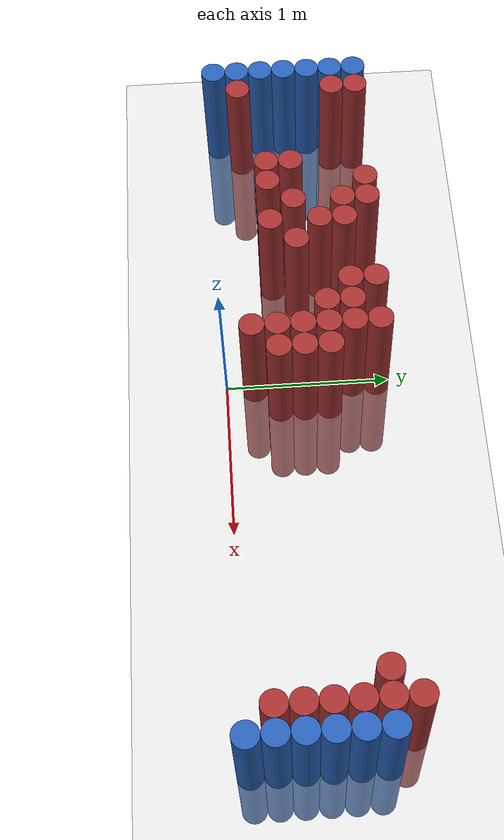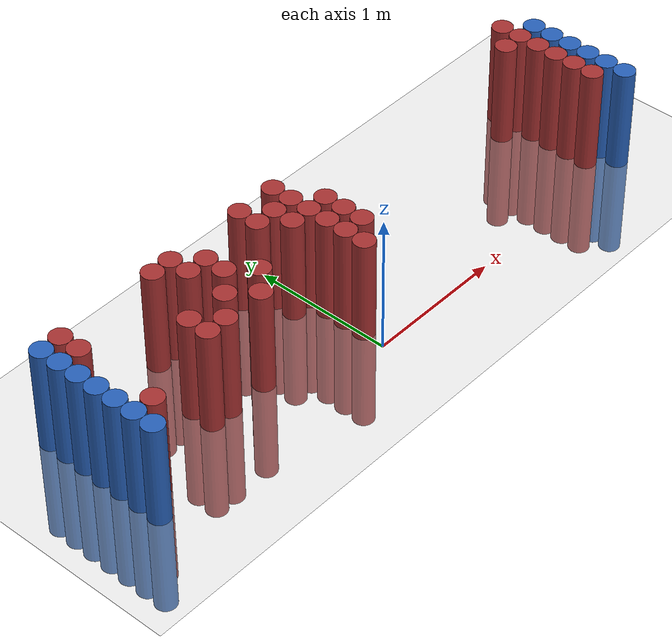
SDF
<sdf version="1.6">
 <world name="default">
  <model name="ground_plane">
   <static>1</static>
   <link name="link">
    <collision name="collision">
     <geometry><plane><normal>0 0 1</normal><size>100 100</size></plane></geometry>
     <surface><friction><ode><mu>100</mu><mu2>50</mu2></ode></friction></surface>
    </collision>
    <visual name="visual">
     <cast_shadows>0</cast_shadows>
     <geometry><plane><normal>0 0 1</normal><size>100 100</size></plane></geometry>
     <material>
      <script><uri>file://media/materials/scripts/gazebo.material</uri><name>Gazebo/Grey</name></script>
     </material>
    </visual>
   </link>
  </model>
  <model name="unit_cylinder_94">
   <static>1</static>
   <pose>2.425000 0.025000 0.000000 0.000000 0.000000 0.000000</pose>
   <link name="link">
    <inertial>
     <mass>1</mass>
     <inertia><ixx>0.145833</ixx><ixy>0</ixy><ixz>0</ixz><iyy>0.145833</iyy><iyz>0</iyz><izz>0.125</izz></inertia>
    </inertial>
    <collision name="collision">
     <geometry><cylinder><radius>0.075000</radius><length>1.5</length></cylinder></geometry>
    </collision>
    <visual name="visual">
     <geometry><cylinder><radius>0.075000</radius><length>1.5</length></cylinder></geometry>
     <material>
      <ambient>0.152000 0.379000 0.720000 1</ambient>
      <diffuse>0.152000 0.379000 0.720000 1</diffuse>
     </material>
     <material>
      <script><name>Gazebo/Grey</name><uri>file://media/materials/scripts/gazebo.material</uri></script>
     </material>
    </visual>
   </link>
  </model>
  <model name="unit_cylinder_95">
   <static>1</static>
   <pose>-1.925000 0.025000 0.000000 0.000000 0.000000 0.000000</pose>
   <link name="link">
    <inertial>
     <mass>1</mass>
     <inertia><ixx>0.145833</ixx><ixy>0</ixy><ixz>0</ixz><iyy>0.145833</iyy><iyz>0</iyz><izz>0.125</izz></inertia>
    </inertial>
    <collision name="collision">
     <geometry><cylinder><radius>0.075000</radius><length>1.5</length></cylinder></geometry>
    </collision>
    <visual name="visual">
     <geometry><cylinder><radius>0.075000</radius><length>1.5</length></cylinder></geometry>
     <material>
      <ambient>0.152000 0.379000 0.720000 1</ambient>
      <diffuse>0.152000 0.379000 0.720000 1</diffuse>
     </material>
     <material>
      <script><name>Gazebo/Grey</name><uri>file://media/materials/scripts/gazebo.material</uri></script>
     </material>
    </visual>
   </link>
  </model>
  <model name="unit_cylinder_96">
   <static>1</static>
   <pose>-1.925000 0.175000 0.000000 0.000000 0.000000 0.000000</pose>
   <link name="link">
    <inertial>
     <mass>1</mass>
     <inertia><ixx>0.145833</ixx><ixy>0</ixy><ixz>0</ixz><iyy>0.145833</iyy><iyz>0</iyz><izz>0.125</izz></inertia>
    </inertial>
    <collision name="collision">
     <geometry><cylinder><radius>0.075000</radius><length>1.5</length></cylinder></geometry>
    </collision>
    <visual name="visual">
     <geometry><cylinder><radius>0.075000</radius><length>1.5</length></cylinder></geometry>
     <material>
      <ambient>0.152000 0.379000 0.720000 1</ambient>
      <diffuse>0.152000 0.379000 0.720000 1</diffuse>
     </material>
     <material>
      <script><name>Gazebo/Grey</name><uri>file://media/materials/scripts/gazebo.material</uri></script>
     </material>
    </visual>
   </link>
  </model>
  <model name="unit_cylinder_97">
   <static>1</static>
   <pose>-1.925000 0.325000 0.000000 0.000000 0.000000 0.000000</pose>
   <link name="link">
    <inertial>
     <mass>1</mass>
     <inertia><ixx>0.145833</ixx><ixy>0</ixy><ixz>0</ixz><iyy>0.145833</iyy><iyz>0</iyz><izz>0.125</izz></inertia>
    </inertial>
    <collision name="collision">
     <geometry><cylinder><radius>0.075000</radius><length>1.5</length></cylinder></geometry>
    </collision>
    <visual name="visual">
     <geometry><cylinder><radius>0.075000</radius><length>1.5</length></cylinder></geometry>
     <material>
      <ambient>0.152000 0.379000 0.720000 1</ambient>
      <diffuse>0.152000 0.379000 0.720000 1</diffuse>
     </material>
     <material>
      <script><name>Gazebo/Grey</name><uri>file://media/materials/scripts/gazebo.material</uri></script>
     </material>
    </visual>
   </link>
  </model>
  <model name="unit_cylinder_98">
   <static>1</static>
   <pose>-1.925000 0.475000 0.000000 0.000000 0.000000 0.000000</pose>
   <link name="link">
    <inertial>
     <mass>1</mass>
     <inertia><ixx>0.145833</ixx><ixy>0</ixy><ixz>0</ixz><iyy>0.145833</iyy><iyz>0</iyz><izz>0.125</izz></inertia>
    </inertial>
    <collision name="collision">
     <geometry><cylinder><radius>0.075000</radius><length>1.5</length></cylinder></geometry>
    </collision>
    <visual name="visual">
     <geometry><cylinder><radius>0.075000</radius><length>1.5</length></cylinder></geometry>
     <material>
      <ambient>0.152000 0.379000 0.720000 1</ambient>
      <diffuse>0.152000 0.379000 0.720000 1</diffuse>
     </material>
     <material>
      <script><name>Gazebo/Grey</name><uri>file://media/materials/scripts/gazebo.material</uri></script>
     </material>
    </visual>
   </link>
  </model>
  <model name="unit_cylinder_99">
   <static>1</static>
   <pose>-1.925000 0.625000 0.000000 0.000000 0.000000 0.000000</pose>
   <link name="link">
    <inertial>
     <mass>1</mass>
     <inertia><ixx>0.145833</ixx><ixy>0</ixy><ixz>0</ixz><iyy>0.145833</iyy><iyz>0</iyz><izz>0.125</izz></inertia>
    </inertial>
    <collision name="collision">
     <geometry><cylinder><radius>0.075000</radius><length>1.5</length></cylinder></geometry>
    </collision>
    <visual name="visual">
     <geometry><cylinder><radius>0.075000</radius><length>1.5</length></cylinder></geometry>
     <material>
      <ambient>0.152000 0.379000 0.720000 1</ambient>
      <diffuse>0.152000 0.379000 0.720000 1</diffuse>
     </material>
     <material>
      <script><name>Gazebo/Grey</name><uri>file://media/materials/scripts/gazebo.material</uri></script>
     </material>
    </visual>
   </link>
  </model>
  <model name="unit_cylinder_100">
   <static>1</static>
   <pose>-1.925000 0.775000 0.000000 0.000000 0.000000 0.000000</pose>
   <link name="link">
    <inertial>
     <mass>1</mass>
     <inertia><ixx>0.145833</ixx><ixy>0</ixy><ixz>0</ixz><iyy>0.145833</iyy><iyz>0</iyz><izz>0.125</izz></inertia>
    </inertial>
    <collision name="collision">
     <geometry><cylinder><radius>0.075000</radius><length>1.5</length></cylinder></geometry>
    </collision>
    <visual name="visual">
     <geometry><cylinder><radius>0.075000</radius><length>1.5</length></cylinder></geometry>
     <material>
      <ambient>0.152000 0.379000 0.720000 1</ambient>
      <diffuse>0.152000 0.379000 0.720000 1</diffuse>
     </material>
     <material>
      <script><name>Gazebo/Grey</name><uri>file://media/materials/scripts/gazebo.material</uri></script>
     </material>
    </visual>
   </link>
  </model>
  <model name="unit_cylinder_101">
   <static>1</static>
   <pose>-1.925000 0.925000 0.000000 0.000000 0.000000 0.000000</pose>
   <link name="link">
    <inertial>
     <mass>1</mass>
     <inertia><ixx>0.145833</ixx><ixy>0</ixy><ixz>0</ixz><iyy>0.145833</iyy><iyz>0</iyz><izz>0.125</izz></inertia>
    </inertial>
    <collision name="collision">
     <geometry><cylinder><radius>0.075000</radius><length>1.5</length></cylinder></geometry>
    </collision>
    <visual name="visual">
     <geometry><cylinder><radius>0.075000</radius><length>1.5</length></cylinder></geometry>
     <material>
      <ambient>0.152000 0.379000 0.720000 1</ambient>
      <diffuse>0.152000 0.379000 0.720000 1</diffuse>
     </material>
     <material>
      <script><name>Gazebo/Grey</name><uri>file://media/materials/scripts/gazebo.material</uri></script>
     </material>
    </visual>
   </link>
  </model>
  <model name="unit_cylinder_126">
   <static>1</static>
   <pose>-1.775000 0.175000 0.000000 0.000000 0.000000 0.000000</pose>
   <link name="link">
    <inertial>
     <mass>1</mass>
     <inertia><ixx>0.145833</ixx><ixy>0</ixy><ixz>0</ixz><iyy>0.145833</iyy><iyz>0</iyz><izz>0.125</izz></inertia>
    </inertial>
    <collision name="collision">
     <geometry><cylinder><radius>0.075000</radius><length>1.5</length></cylinder></geometry>
    </collision>
    <visual name="visual">
     <geometry><cylinder><radius>0.075000</radius><length>1.5</length></cylinder></geometry>
     <material>
      <ambient>0.648000 0.192000 0.192000 1</ambient>
      <diffuse>0.648000 0.192000 0.192000 1</diffuse>
     </material>
     <material>
      <script><name>Gazebo/Grey</name><uri>file://media/materials/scripts/gazebo.material</uri></script>
     </material>
    </visual>
   </link>
  </model>
  <model name="unit_cylinder_127">
   <static>1</static>
   <pose>-1.775000 0.775000 0.000000 0.000000 0.000000 0.000000</pose>
   <link name="link">
    <inertial>
     <mass>1</mass>
     <inertia><ixx>0.145833</ixx><ixy>0</ixy><ixz>0</ixz><iyy>0.145833</iyy><iyz>0</iyz><izz>0.125</izz></inertia>
    </inertial>
    <collision name="collision">
     <geometry><cylinder><radius>0.075000</radius><length>1.5</length></cylinder></geometry>
    </collision>
    <visual name="visual">
     <geometry><cylinder><radius>0.075000</radius><length>1.5</length></cylinder></geometry>
     <material>
      <ambient>0.648000 0.192000 0.192000 1</ambient>
      <diffuse>0.648000 0.192000 0.192000 1</diffuse>
     </material>
     <material>
      <script><name>Gazebo/Grey</name><uri>file://media/materials/scripts/gazebo.material</uri></script>
     </material>
    </visual>
   </link>
  </model>
  <model name="unit_cylinder_128">
   <static>1</static>
   <pose>-1.775000 0.925000 0.000000 0.000000 0.000000 0.000000</pose>
   <link name="link">
    <inertial>
     <mass>1</mass>
     <inertia><ixx>0.145833</ixx><ixy>0</ixy><ixz>0</ixz><iyy>0.145833</iyy><iyz>0</iyz><izz>0.125</izz></inertia>
    </inertial>
    <collision name="collision">
     <geometry><cylinder><radius>0.075000</radius><length>1.5</length></cylinder></geometry>
    </collision>
    <visual name="visual">
     <geometry><cylinder><radius>0.075000</radius><length>1.5</length></cylinder></geometry>
     <material>
      <ambient>0.648000 0.192000 0.192000 1</ambient>
      <diffuse>0.648000 0.192000 0.192000 1</diffuse>
     </material>
     <material>
      <script><name>Gazebo/Grey</name><uri>file://media/materials/scripts/gazebo.material</uri></script>
     </material>
    </visual>
   </link>
  </model>
  <model name="unit_cylinder_153">
   <static>1</static>
   <pose>-1.175000 0.325000 0.000000 0.000000 0.000000 0.000000</pose>
   <link name="link">
    <inertial>
     <mass>1</mass>
     <inertia><ixx>0.145833</ixx><ixy>0</ixy><ixz>0</ixz><iyy>0.145833</iyy><iyz>0</iyz><izz>0.125</izz></inertia>
    </inertial>
    <collision name="collision">
     <geometry><cylinder><radius>0.075000</radius><length>1.5</length></cylinder></geometry>
    </collision>
    <visual name="visual">
     <geometry><cylinder><radius>0.075000</radius><length>1.5</length></cylinder></geometry>
     <material>
      <ambient>0.648000 0.192000 0.192000 1</ambient>
      <diffuse>0.648000 0.192000 0.192000 1</diffuse>
     </material>
     <material>
      <script><name>Gazebo/Grey</name><uri>file://media/materials/scripts/gazebo.material</uri></script>
     </material>
    </visual>
   </link>
  </model>
  <model name="unit_cylinder_154">
   <static>1</static>
   <pose>-1.175000 0.475000 0.000000 0.000000 0.000000 0.000000</pose>
   <link name="link">
    <inertial>
     <mass>1</mass>
     <inertia><ixx>0.145833</ixx><ixy>0</ixy><ixz>0</ixz><iyy>0.145833</iyy><iyz>0</iyz><izz>0.125</izz></inertia>
    </inertial>
    <collision name="collision">
     <geometry><cylinder><radius>0.075000</radius><length>1.5</length></cylinder></geometry>
    </collision>
    <visual name="visual">
     <geometry><cylinder><radius>0.075000</radius><length>1.5</length></cylinder></geometry>
     <material>
      <ambient>0.648000 0.192000 0.192000 1</ambient>
      <diffuse>0.648000 0.192000 0.192000 1</diffuse>
     </material>
     <material>
      <script><name>Gazebo/Grey</name><uri>file://media/materials/scripts/gazebo.material</uri></script>
     </material>
    </visual>
   </link>
  </model>
  <model name="unit_cylinder_155">
   <static>1</static>
   <pose>-1.025000 0.325000 0.000000 0.000000 0.000000 0.000000</pose>
   <link name="link">
    <inertial>
     <mass>1</mass>
     <inertia><ixx>0.145833</ixx><ixy>0</ixy><ixz>0</ixz><iyy>0.145833</iyy><iyz>0</iyz><izz>0.125</izz></inertia>
    </inertial>
    <collision name="collision">
     <geometry><cylinder><radius>0.075000</radius><length>1.5</length></cylinder></geometry>
    </collision>
    <visual name="visual">
     <geometry><cylinder><radius>0.075000</radius><length>1.5</length></cylinder></geometry>
     <material>
      <ambient>0.648000 0.192000 0.192000 1</ambient>
      <diffuse>0.648000 0.192000 0.192000 1</diffuse>
     </material>
     <material>
      <script><name>Gazebo/Grey</name><uri>file://media/materials/scripts/gazebo.material</uri></script>
     </material>
    </visual>
   </link>
  </model>
  <model name="unit_cylinder_156">
   <static>1</static>
   <pose>-1.025000 0.925000 0.000000 0.000000 0.000000 0.000000</pose>
   <link name="link">
    <inertial>
     <mass>1</mass>
     <inertia><ixx>0.145833</ixx><ixy>0</ixy><ixz>0</ixz><iyy>0.145833</iyy><iyz>0</iyz><izz>0.125</izz></inertia>
    </inertial>
    <collision name="collision">
     <geometry><cylinder><radius>0.075000</radius><length>1.5</length></cylinder></geometry>
    </collision>
    <visual name="visual">
     <geometry><cylinder><radius>0.075000</radius><length>1.5</length></cylinder></geometry>
     <material>
      <ambient>0.648000 0.192000 0.192000 1</ambient>
      <diffuse>0.648000 0.192000 0.192000 1</diffuse>
     </material>
     <material>
      <script><name>Gazebo/Grey</name><uri>file://media/materials/scripts/gazebo.material</uri></script>
     </material>
    </visual>
   </link>
  </model>
  <model name="unit_cylinder_158">
   <static>1</static>
   <pose>-0.875000 0.475000 0.000000 0.000000 0.000000 0.000000</pose>
   <link name="link">
    <inertial>
     <mass>1</mass>
     <inertia><ixx>0.145833</ixx><ixy>0</ixy><ixz>0</ixz><iyy>0.145833</iyy><iyz>0</iyz><izz>0.125</izz></inertia>
    </inertial>
    <collision name="collision">
     <geometry><cylinder><radius>0.075000</radius><length>1.5</length></cylinder></geometry>
    </collision>
    <visual name="visual">
     <geometry><cylinder><radius>0.075000</radius><length>1.5</length></cylinder></geometry>
     <material>
      <ambient>0.648000 0.192000 0.192000 1</ambient>
      <diffuse>0.648000 0.192000 0.192000 1</diffuse>
     </material>
     <material>
      <script><name>Gazebo/Grey</name><uri>file://media/materials/scripts/gazebo.material</uri></script>
     </material>
    </visual>
   </link>
  </model>
  <model name="unit_cylinder_159">
   <static>1</static>
   <pose>-0.875000 0.775000 0.000000 0.000000 0.000000 0.000000</pose>
   <link name="link">
    <inertial>
     <mass>1</mass>
     <inertia><ixx>0.145833</ixx><ixy>0</ixy><ixz>0</ixz><iyy>0.145833</iyy><iyz>0</iyz><izz>0.125</izz></inertia>
    </inertial>
    <collision name="collision">
     <geometry><cylinder><radius>0.075000</radius><length>1.5</length></cylinder></geometry>
    </collision>
    <visual name="visual">
     <geometry><cylinder><radius>0.075000</radius><length>1.5</length></cylinder></geometry>
     <material>
      <ambient>0.648000 0.192000 0.192000 1</ambient>
      <diffuse>0.648000 0.192000 0.192000 1</diffuse>
     </material>
     <material>
      <script><name>Gazebo/Grey</name><uri>file://media/materials/scripts/gazebo.material</uri></script>
     </material>
    </visual>
   </link>
  </model>
  <model name="unit_cylinder_160">
   <static>1</static>
   <pose>-0.875000 0.925000 0.000000 0.000000 0.000000 0.000000</pose>
   <link name="link">
    <inertial>
     <mass>1</mass>
     <inertia><ixx>0.145833</ixx><ixy>0</ixy><ixz>0</ixz><iyy>0.145833</iyy><iyz>0</iyz><izz>0.125</izz></inertia>
    </inertial>
    <collision name="collision">
     <geometry><cylinder><radius>0.075000</radius><length>1.5</length></cylinder></geometry>
    </collision>
    <visual name="visual">
     <geometry><cylinder><radius>0.075000</radius><length>1.5</length></cylinder></geometry>
     <material>
      <ambient>0.648000 0.192000 0.192000 1</ambient>
      <diffuse>0.648000 0.192000 0.192000 1</diffuse>
     </material>
     <material>
      <script><name>Gazebo/Grey</name><uri>file://media/materials/scripts/gazebo.material</uri></script>
     </material>
    </visual>
   </link>
  </model>
  <model name="unit_cylinder_163">
   <static>1</static>
   <pose>-0.725000 0.325000 0.000000 0.000000 0.000000 0.000000</pose>
   <link name="link">
    <inertial>
     <mass>1</mass>
     <inertia><ixx>0.145833</ixx><ixy>0</ixy><ixz>0</ixz><iyy>0.145833</iyy><iyz>0</iyz><izz>0.125</izz></inertia>
    </inertial>
    <collision name="collision">
     <geometry><cylinder><radius>0.075000</radius><length>1.5</length></cylinder></geometry>
    </collision>
    <visual name="visual">
     <geometry><cylinder><radius>0.075000</radius><length>1.5</length></cylinder></geometry>
     <material>
      <ambient>0.648000 0.192000 0.192000 1</ambient>
      <diffuse>0.648000 0.192000 0.192000 1</diffuse>
     </material>
     <material>
      <script><name>Gazebo/Grey</name><uri>file://media/materials/scripts/gazebo.material</uri></script>
     </material>
    </visual>
   </link>
  </model>
  <model name="unit_cylinder_164">
   <static>1</static>
   <pose>-0.725000 0.625000 0.000000 0.000000 0.000000 0.000000</pose>
   <link name="link">
    <inertial>
     <mass>1</mass>
     <inertia><ixx>0.145833</ixx><ixy>0</ixy><ixz>0</ixz><iyy>0.145833</iyy><iyz>0</iyz><izz>0.125</izz></inertia>
    </inertial>
    <collision name="collision">
     <geometry><cylinder><radius>0.075000</radius><length>1.5</length></cylinder></geometry>
    </collision>
    <visual name="visual">
     <geometry><cylinder><radius>0.075000</radius><length>1.5</length></cylinder></geometry>
     <material>
      <ambient>0.648000 0.192000 0.192000 1</ambient>
      <diffuse>0.648000 0.192000 0.192000 1</diffuse>
     </material>
     <material>
      <script><name>Gazebo/Grey</name><uri>file://media/materials/scripts/gazebo.material</uri></script>
     </material>
    </visual>
   </link>
  </model>
  <model name="unit_cylinder_165">
   <static>1</static>
   <pose>-0.725000 0.775000 0.000000 0.000000 0.000000 0.000000</pose>
   <link name="link">
    <inertial>
     <mass>1</mass>
     <inertia><ixx>0.145833</ixx><ixy>0</ixy><ixz>0</ixz><iyy>0.145833</iyy><iyz>0</iyz><izz>0.125</izz></inertia>
    </inertial>
    <collision name="collision">
     <geometry><cylinder><radius>0.075000</radius><length>1.5</length></cylinder></geometry>
    </collision>
    <visual name="visual">
     <geometry><cylinder><radius>0.075000</radius><length>1.5</length></cylinder></geometry>
     <material>
      <ambient>0.648000 0.192000 0.192000 1</ambient>
      <diffuse>0.648000 0.192000 0.192000 1</diffuse>
     </material>
     <material>
      <script><name>Gazebo/Grey</name><uri>file://media/materials/scripts/gazebo.material</uri></script>
     </material>
    </visual>
   </link>
  </model>
  <model name="unit_cylinder_168">
   <static>1</static>
   <pose>-0.575000 0.475000 0.000000 0.000000 0.000000 0.000000</pose>
   <link name="link">
    <inertial>
     <mass>1</mass>
     <inertia><ixx>0.145833</ixx><ixy>0</ixy><ixz>0</ixz><iyy>0.145833</iyy><iyz>0</iyz><izz>0.125</izz></inertia>
    </inertial>
    <collision name="collision">
     <geometry><cylinder><radius>0.075000</radius><length>1.5</length></cylinder></geometry>
    </collision>
    <visual name="visual">
     <geometry><cylinder><radius>0.075000</radius><length>1.5</length></cylinder></geometry>
     <material>
      <ambient>0.648000 0.192000 0.192000 1</ambient>
      <diffuse>0.648000 0.192000 0.192000 1</diffuse>
     </material>
     <material>
      <script><name>Gazebo/Grey</name><uri>file://media/materials/scripts/gazebo.material</uri></script>
     </material>
    </visual>
   </link>
  </model>
  <model name="unit_cylinder_184">
   <static>1</static>
   <pose>-0.275000 0.775000 0.000000 0.000000 0.000000 0.000000</pose>
   <link name="link">
    <inertial>
     <mass>1</mass>
     <inertia><ixx>0.145833</ixx><ixy>0</ixy><ixz>0</ixz><iyy>0.145833</iyy><iyz>0</iyz><izz>0.125</izz></inertia>
    </inertial>
    <collision name="collision">
     <geometry><cylinder><radius>0.075000</radius><length>1.5</length></cylinder></geometry>
    </collision>
    <visual name="visual">
     <geometry><cylinder><radius>0.075000</radius><length>1.5</length></cylinder></geometry>
     <material>
      <ambient>0.648000 0.192000 0.192000 1</ambient>
      <diffuse>0.648000 0.192000 0.192000 1</diffuse>
     </material>
     <material>
      <script><name>Gazebo/Grey</name><uri>file://media/materials/scripts/gazebo.material</uri></script>
     </material>
    </visual>
   </link>
  </model>
  <model name="unit_cylinder_185">
   <static>1</static>
   <pose>-0.275000 0.925000 0.000000 0.000000 0.000000 0.000000</pose>
   <link name="link">
    <inertial>
     <mass>1</mass>
     <inertia><ixx>0.145833</ixx><ixy>0</ixy><ixz>0</ixz><iyy>0.145833</iyy><iyz>0</iyz><izz>0.125</izz></inertia>
    </inertial>
    <collision name="collision">
     <geometry><cylinder><radius>0.075000</radius><length>1.5</length></cylinder></geometry>
    </collision>
    <visual name="visual">
     <geometry><cylinder><radius>0.075000</radius><length>1.5</length></cylinder></geometry>
     <material>
      <ambient>0.648000 0.192000 0.192000 1</ambient>
      <diffuse>0.648000 0.192000 0.192000 1</diffuse>
     </material>
     <material>
      <script><name>Gazebo/Grey</name><uri>file://media/materials/scripts/gazebo.material</uri></script>
     </material>
    </visual>
   </link>
  </model>
  <model name="unit_cylinder_194">
   <static>1</static>
   <pose>-0.125000 0.625000 0.000000 0.000000 0.000000 0.000000</pose>
   <link name="link">
    <inertial>
     <mass>1</mass>
     <inertia><ixx>0.145833</ixx><ixy>0</ixy><ixz>0</ixz><iyy>0.145833</iyy><iyz>0</iyz><izz>0.125</izz></inertia>
    </inertial>
    <collision name="collision">
     <geometry><cylinder><radius>0.075000</radius><length>1.5</length></cylinder></geometry>
    </collision>
    <visual name="visual">
     <geometry><cylinder><radius>0.075000</radius><length>1.5</length></cylinder></geometry>
     <material>
      <ambient>0.648000 0.192000 0.192000 1</ambient>
      <diffuse>0.648000 0.192000 0.192000 1</diffuse>
     </material>
     <material>
      <script><name>Gazebo/Grey</name><uri>file://media/materials/scripts/gazebo.material</uri></script>
     </material>
    </visual>
   </link>
  </model>
  <model name="unit_cylinder_195">
   <static>1</static>
   <pose>-0.125000 0.775000 0.000000 0.000000 0.000000 0.000000</pose>
   <link name="link">
    <inertial>
     <mass>1</mass>
     <inertia><ixx>0.145833</ixx><ixy>0</ixy><ixz>0</ixz><iyy>0.145833</iyy><iyz>0</iyz><izz>0.125</izz></inertia>
    </inertial>
    <collision name="collision">
     <geometry><cylinder><radius>0.075000</radius><length>1.5</length></cylinder></geometry>
    </collision>
    <visual name="visual">
     <geometry><cylinder><radius>0.075000</radius><length>1.5</length></cylinder></geometry>
     <material>
      <ambient>0.648000 0.192000 0.192000 1</ambient>
      <diffuse>0.648000 0.192000 0.192000 1</diffuse>
     </material>
     <material>
      <script><name>Gazebo/Grey</name><uri>file://media/materials/scripts/gazebo.material</uri></script>
     </material>
    </visual>
   </link>
  </model>
  <model name="unit_cylinder_200">
   <static>1</static>
   <pose>0.025000 0.175000 0.000000 0.000000 0.000000 0.000000</pose>
   <link name="link">
    <inertial>
     <mass>1</mass>
     <inertia><ixx>0.145833</ixx><ixy>0</ixy><ixz>0</ixz><iyy>0.145833</iyy><iyz>0</iyz><izz>0.125</izz></inertia>
    </inertial>
    <collision name="collision">
     <geometry><cylinder><radius>0.075000</radius><length>1.5</length></cylinder></geometry>
    </collision>
    <visual name="visual">
     <geometry><cylinder><radius>0.075000</radius><length>1.5</length></cylinder></geometry>
     <material>
      <ambient>0.648000 0.192000 0.192000 1</ambient>
      <diffuse>0.648000 0.192000 0.192000 1</diffuse>
     </material>
     <material>
      <script><name>Gazebo/Grey</name><uri>file://media/materials/scripts/gazebo.material</uri></script>
     </material>
    </visual>
   </link>
  </model>
  <model name="unit_cylinder_201">
   <static>1</static>
   <pose>0.025000 0.325000 0.000000 0.000000 0.000000 0.000000</pose>
   <link name="link">
    <inertial>
     <mass>1</mass>
     <inertia><ixx>0.145833</ixx><ixy>0</ixy><ixz>0</ixz><iyy>0.145833</iyy><iyz>0</iyz><izz>0.125</izz></inertia>
    </inertial>
    <collision name="collision">
     <geometry><cylinder><radius>0.075000</radius><length>1.5</length></cylinder></geometry>
    </collision>
    <visual name="visual">
     <geometry><cylinder><radius>0.075000</radius><length>1.5</length></cylinder></geometry>
     <material>
      <ambient>0.648000 0.192000 0.192000 1</ambient>
      <diffuse>0.648000 0.192000 0.192000 1</diffuse>
     </material>
     <material>
      <script><name>Gazebo/Grey</name><uri>file://media/materials/scripts/gazebo.material</uri></script>
     </material>
    </visual>
   </link>
  </model>
  <model name="unit_cylinder_202">
   <static>1</static>
   <pose>0.025000 0.475000 0.000000 0.000000 0.000000 0.000000</pose>
   <link name="link">
    <inertial>
     <mass>1</mass>
     <inertia><ixx>0.145833</ixx><ixy>0</ixy><ixz>0</ixz><iyy>0.145833</iyy><iyz>0</iyz><izz>0.125</izz></inertia>
    </inertial>
    <collision name="collision">
     <geometry><cylinder><radius>0.075000</radius><length>1.5</length></cylinder></geometry>
    </collision>
    <visual name="visual">
     <geometry><cylinder><radius>0.075000</radius><length>1.5</length></cylinder></geometry>
     <material>
      <ambient>0.648000 0.192000 0.192000 1</ambient>
      <diffuse>0.648000 0.192000 0.192000 1</diffuse>
     </material>
     <material>
      <script><name>Gazebo/Grey</name><uri>file://media/materials/scripts/gazebo.material</uri></script>
     </material>
    </visual>
   </link>
  </model>
  <model name="unit_cylinder_203">
   <static>1</static>
   <pose>0.025000 0.625000 0.000000 0.000000 0.000000 0.000000</pose>
   <link name="link">
    <inertial>
     <mass>1</mass>
     <inertia><ixx>0.145833</ixx><ixy>0</ixy><ixz>0</ixz><iyy>0.145833</iyy><iyz>0</iyz><izz>0.125</izz></inertia>
    </inertial>
    <collision name="collision">
     <geometry><cylinder><radius>0.075000</radius><length>1.5</length></cylinder></geometry>
    </collision>
    <visual name="visual">
     <geometry><cylinder><radius>0.075000</radius><length>1.5</length></cylinder></geometry>
     <material>
      <ambient>0.648000 0.192000 0.192000 1</ambient>
      <diffuse>0.648000 0.192000 0.192000 1</diffuse>
     </material>
     <material>
      <script><name>Gazebo/Grey</name><uri>file://media/materials/scripts/gazebo.material</uri></script>
     </material>
    </visual>
   </link>
  </model>
  <model name="unit_cylinder_204">
   <static>1</static>
   <pose>0.025000 0.775000 0.000000 0.000000 0.000000 0.000000</pose>
   <link name="link">
    <inertial>
     <mass>1</mass>
     <inertia><ixx>0.145833</ixx><ixy>0</ixy><ixz>0</ixz><iyy>0.145833</iyy><iyz>0</iyz><izz>0.125</izz></inertia>
    </inertial>
    <collision name="collision">
     <geometry><cylinder><radius>0.075000</radius><length>1.5</length></cylinder></geometry>
    </collision>
    <visual name="visual">
     <geometry><cylinder><radius>0.075000</radius><length>1.5</length></cylinder></geometry>
     <material>
      <ambient>0.648000 0.192000 0.192000 1</ambient>
      <diffuse>0.648000 0.192000 0.192000 1</diffuse>
     </material>
     <material>
      <script><name>Gazebo/Grey</name><uri>file://media/materials/scripts/gazebo.material</uri></script>
     </material>
    </visual>
   </link>
  </model>
  <model name="unit_cylinder_205">
   <static>1</static>
   <pose>0.025000 0.925000 0.000000 0.000000 0.000000 0.000000</pose>
   <link name="link">
    <inertial>
     <mass>1</mass>
     <inertia><ixx>0.145833</ixx><ixy>0</ixy><ixz>0</ixz><iyy>0.145833</iyy><iyz>0</iyz><izz>0.125</izz></inertia>
    </inertial>
    <collision name="collision">
     <geometry><cylinder><radius>0.075000</radius><length>1.5</length></cylinder></geometry>
    </collision>
    <visual name="visual">
     <geometry><cylinder><radius>0.075000</radius><length>1.5</length></cylinder></geometry>
     <material>
      <ambient>0.648000 0.192000 0.192000 1</ambient>
      <diffuse>0.648000 0.192000 0.192000 1</diffuse>
     </material>
     <material>
      <script><name>Gazebo/Grey</name><uri>file://media/materials/scripts/gazebo.material</uri></script>
     </material>
    </visual>
   </link>
  </model>
  <model name="unit_cylinder_207">
   <static>1</static>
   <pose>0.175000 0.325000 0.000000 0.000000 0.000000 0.000000</pose>
   <link name="link">
    <inertial>
     <mass>1</mass>
     <inertia><ixx>0.145833</ixx><ixy>0</ixy><ixz>0</ixz><iyy>0.145833</iyy><iyz>0</iyz><izz>0.125</izz></inertia>
    </inertial>
    <collision name="collision">
     <geometry><cylinder><radius>0.075000</radius><length>1.5</length></cylinder></geometry>
    </collision>
    <visual name="visual">
     <geometry><cylinder><radius>0.075000</radius><length>1.5</length></cylinder></geometry>
     <material>
      <ambient>0.648000 0.192000 0.192000 1</ambient>
      <diffuse>0.648000 0.192000 0.192000 1</diffuse>
     </material>
     <material>
      <script><name>Gazebo/Grey</name><uri>file://media/materials/scripts/gazebo.material</uri></script>
     </material>
    </visual>
   </link>
  </model>
  <model name="unit_cylinder_208">
   <static>1</static>
   <pose>0.175000 0.475000 0.000000 0.000000 0.000000 0.000000</pose>
   <link name="link">
    <inertial>
     <mass>1</mass>
     <inertia><ixx>0.145833</ixx><ixy>0</ixy><ixz>0</ixz><iyy>0.145833</iyy><iyz>0</iyz><izz>0.125</izz></inertia>
    </inertial>
    <collision name="collision">
     <geometry><cylinder><radius>0.075000</radius><length>1.5</length></cylinder></geometry>
    </collision>
    <visual name="visual">
     <geometry><cylinder><radius>0.075000</radius><length>1.5</length></cylinder></geometry>
     <material>
      <ambient>0.648000 0.192000 0.192000 1</ambient>
      <diffuse>0.648000 0.192000 0.192000 1</diffuse>
     </material>
     <material>
      <script><name>Gazebo/Grey</name><uri>file://media/materials/scripts/gazebo.material</uri></script>
     </material>
    </visual>
   </link>
  </model>
  <model name="unit_cylinder_209">
   <static>1</static>
   <pose>0.175000 0.625000 0.000000 0.000000 0.000000 0.000000</pose>
   <link name="link">
    <inertial>
     <mass>1</mass>
     <inertia><ixx>0.145833</ixx><ixy>0</ixy><ixz>0</ixz><iyy>0.145833</iyy><iyz>0</iyz><izz>0.125</izz></inertia>
    </inertial>
    <collision name="collision">
     <geometry><cylinder><radius>0.075000</radius><length>1.5</length></cylinder></geometry>
    </collision>
    <visual name="visual">
     <geometry><cylinder><radius>0.075000</radius><length>1.5</length></cylinder></geometry>
     <material>
      <ambient>0.648000 0.192000 0.192000 1</ambient>
      <diffuse>0.648000 0.192000 0.192000 1</diffuse>
     </material>
     <material>
      <script><name>Gazebo/Grey</name><uri>file://media/materials/scripts/gazebo.material</uri></script>
     </material>
    </visual>
   </link>
  </model>
  <model name="unit_cylinder_229">
   <static>1</static>
   <pose>2.125000 0.775000 0.000000 0.000000 0.000000 0.000000</pose>
   <link name="link">
    <inertial>
     <mass>1</mass>
     <inertia><ixx>0.145833</ixx><ixy>0</ixy><ixz>0</ixz><iyy>0.145833</iyy><iyz>0</iyz><izz>0.125</izz></inertia>
    </inertial>
    <collision name="collision">
     <geometry><cylinder><radius>0.075000</radius><length>1.5</length></cylinder></geometry>
    </collision>
    <visual name="visual">
     <geometry><cylinder><radius>0.075000</radius><length>1.5</length></cylinder></geometry>
     <material>
      <ambient>0.648000 0.192000 0.192000 1</ambient>
      <diffuse>0.648000 0.192000 0.192000 1</diffuse>
     </material>
     <material>
      <script><name>Gazebo/Grey</name><uri>file://media/materials/scripts/gazebo.material</uri></script>
     </material>
    </visual>
   </link>
  </model>
  <model name="unit_cylinder_236">
   <static>1</static>
   <pose>2.275000 0.175000 0.000000 0.000000 0.000000 0.000000</pose>
   <link name="link">
    <inertial>
     <mass>1</mass>
     <inertia><ixx>0.145833</ixx><ixy>0</ixy><ixz>0</ixz><iyy>0.145833</iyy><iyz>0</iyz><izz>0.125</izz></inertia>
    </inertial>
    <collision name="collision">
     <geometry><cylinder><radius>0.075000</radius><length>1.5</length></cylinder></geometry>
    </collision>
    <visual name="visual">
     <geometry><cylinder><radius>0.075000</radius><length>1.5</length></cylinder></geometry>
     <material>
      <ambient>0.648000 0.192000 0.192000 1</ambient>
      <diffuse>0.648000 0.192000 0.192000 1</diffuse>
     </material>
     <material>
      <script><name>Gazebo/Grey</name><uri>file://media/materials/scripts/gazebo.material</uri></script>
     </material>
    </visual>
   </link>
  </model>
  <model name="unit_cylinder_237">
   <static>1</static>
   <pose>2.275000 0.325000 0.000000 0.000000 0.000000 0.000000</pose>
   <link name="link">
    <inertial>
     <mass>1</mass>
     <inertia><ixx>0.145833</ixx><ixy>0</ixy><ixz>0</ixz><iyy>0.145833</iyy><iyz>0</iyz><izz>0.125</izz></inertia>
    </inertial>
    <collision name="collision">
     <geometry><cylinder><radius>0.075000</radius><length>1.5</length></cylinder></geometry>
    </collision>
    <visual name="visual">
     <geometry><cylinder><radius>0.075000</radius><length>1.5</length></cylinder></geometry>
     <material>
      <ambient>0.648000 0.192000 0.192000 1</ambient>
      <diffuse>0.648000 0.192000 0.192000 1</diffuse>
     </material>
     <material>
      <script><name>Gazebo/Grey</name><uri>file://media/materials/scripts/gazebo.material</uri></script>
     </material>
    </visual>
   </link>
  </model>
  <model name="unit_cylinder_238">
   <static>1</static>
   <pose>2.275000 0.475000 0.000000 0.000000 0.000000 0.000000</pose>
   <link name="link">
    <inertial>
     <mass>1</mass>
     <inertia><ixx>0.145833</ixx><ixy>0</ixy><ixz>0</ixz><iyy>0.145833</iyy><iyz>0</iyz><izz>0.125</izz></inertia>
    </inertial>
    <collision name="collision">
     <geometry><cylinder><radius>0.075000</radius><length>1.5</length></cylinder></geometry>
    </collision>
    <visual name="visual">
     <geometry><cylinder><radius>0.075000</radius><length>1.5</length></cylinder></geometry>
     <material>
      <ambient>0.648000 0.192000 0.192000 1</ambient>
      <diffuse>0.648000 0.192000 0.192000 1</diffuse>
     </material>
     <material>
      <script><name>Gazebo/Grey</name><uri>file://media/materials/scripts/gazebo.material</uri></script>
     </material>
    </visual>
   </link>
  </model>
  <model name="unit_cylinder_239">
   <static>1</static>
   <pose>2.275000 0.625000 0.000000 0.000000 0.000000 0.000000</pose>
   <link name="link">
    <inertial>
     <mass>1</mass>
     <inertia><ixx>0.145833</ixx><ixy>0</ixy><ixz>0</ixz><iyy>0.145833</iyy><iyz>0</iyz><izz>0.125</izz></inertia>
    </inertial>
    <collision name="collision">
     <geometry><cylinder><radius>0.075000</radius><length>1.5</length></cylinder></geometry>
    </collision>
    <visual name="visual">
     <geometry><cylinder><radius>0.075000</radius><length>1.5</length></cylinder></geometry>
     <material>
      <ambient>0.648000 0.192000 0.192000 1</ambient>
      <diffuse>0.648000 0.192000 0.192000 1</diffuse>
     </material>
     <material>
      <script><name>Gazebo/Grey</name><uri>file://media/materials/scripts/gazebo.material</uri></script>
     </material>
    </visual>
   </link>
  </model>
  <model name="unit_cylinder_240">
   <static>1</static>
   <pose>2.275000 0.775000 0.000000 0.000000 0.000000 0.000000</pose>
   <link name="link">
    <inertial>
     <mass>1</mass>
     <inertia><ixx>0.145833</ixx><ixy>0</ixy><ixz>0</ixz><iyy>0.145833</iyy><iyz>0</iyz><izz>0.125</izz></inertia>
    </inertial>
    <collision name="collision">
     <geometry><cylinder><radius>0.075000</radius><length>1.5</length></cylinder></geometry>
    </collision>
    <visual name="visual">
     <geometry><cylinder><radius>0.075000</radius><length>1.5</length></cylinder></geometry>
     <material>
      <ambient>0.648000 0.192000 0.192000 1</ambient>
      <diffuse>0.648000 0.192000 0.192000 1</diffuse>
     </material>
     <material>
      <script><name>Gazebo/Grey</name><uri>file://media/materials/scripts/gazebo.material</uri></script>
     </material>
    </visual>
   </link>
  </model>
  <model name="unit_cylinder_241">
   <static>1</static>
   <pose>2.275000 0.925000 0.000000 0.000000 0.000000 0.000000</pose>
   <link name="link">
    <inertial>
     <mass>1</mass>
     <inertia><ixx>0.145833</ixx><ixy>0</ixy><ixz>0</ixz><iyy>0.145833</iyy><iyz>0</iyz><izz>0.125</izz></inertia>
    </inertial>
    <collision name="collision">
     <geometry><cylinder><radius>0.075000</radius><length>1.5</length></cylinder></geometry>
    </collision>
    <visual name="visual">
     <geometry><cylinder><radius>0.075000</radius><length>1.5</length></cylinder></geometry>
     <material>
      <ambient>0.648000 0.192000 0.192000 1</ambient>
      <diffuse>0.648000 0.192000 0.192000 1</diffuse>
     </material>
     <material>
      <script><name>Gazebo/Grey</name><uri>file://media/materials/scripts/gazebo.material</uri></script>
     </material>
    </visual>
   </link>
  </model>
  <model name="unit_cylinder_251">
   <static>1</static>
   <pose>2.425000 0.175000 0.000000 0.000000 0.000000 0.000000</pose>
   <link name="link">
    <inertial>
     <mass>1</mass>
     <inertia><ixx>0.145833</ixx><ixy>0</ixy><ixz>0</ixz><iyy>0.145833</iyy><iyz>0</iyz><izz>0.125</izz></inertia>
    </inertial>
    <collision name="collision">
     <geometry><cylinder><radius>0.075000</radius><length>1.5</length></cylinder></geometry>
    </collision>
    <visual name="visual">
     <geometry><cylinder><radius>0.075000</radius><length>1.5</length></cylinder></geometry>
     <material>
      <ambient>0.152000 0.379000 0.720000 1</ambient>
      <diffuse>0.152000 0.379000 0.720000 1</diffuse>
     </material>
     <material>
      <script><name>Gazebo/Grey</name><uri>file://media/materials/scripts/gazebo.material</uri></script>
     </material>
    </visual>
   </link>
  </model>
  <model name="unit_cylinder_252">
   <static>1</static>
   <pose>2.425000 0.325000 0.000000 0.000000 0.000000 0.000000</pose>
   <link name="link">
    <inertial>
     <mass>1</mass>
     <inertia><ixx>0.145833</ixx><ixy>0</ixy><ixz>0</ixz><iyy>0.145833</iyy><iyz>0</iyz><izz>0.125</izz></inertia>
    </inertial>
    <collision name="collision">
     <geometry><cylinder><radius>0.075000</radius><length>1.5</length></cylinder></geometry>
    </collision>
    <visual name="visual">
     <geometry><cylinder><radius>0.075000</radius><length>1.5</length></cylinder></geometry>
     <material>
      <ambient>0.152000 0.379000 0.720000 1</ambient>
      <diffuse>0.152000 0.379000 0.720000 1</diffuse>
     </material>
     <material>
      <script><name>Gazebo/Grey</name><uri>file://media/materials/scripts/gazebo.material</uri></script>
     </material>
    </visual>
   </link>
  </model>
  <model name="unit_cylinder_253">
   <static>1</static>
   <pose>2.425000 0.475000 0.000000 0.000000 0.000000 0.000000</pose>
   <link name="link">
    <inertial>
     <mass>1</mass>
     <inertia><ixx>0.145833</ixx><ixy>0</ixy><ixz>0</ixz><iyy>0.145833</iyy><iyz>0</iyz><izz>0.125</izz></inertia>
    </inertial>
    <collision name="collision">
     <geometry><cylinder><radius>0.075000</radius><length>1.5</length></cylinder></geometry>
    </collision>
    <visual name="visual">
     <geometry><cylinder><radius>0.075000</radius><length>1.5</length></cylinder></geometry>
     <material>
      <ambient>0.152000 0.379000 0.720000 1</ambient>
      <diffuse>0.152000 0.379000 0.720000 1</diffuse>
     </material>
     <material>
      <script><name>Gazebo/Grey</name><uri>file://media/materials/scripts/gazebo.material</uri></script>
     </material>
    </visual>
   </link>
  </model>
  <model name="unit_cylinder_254">
   <static>1</static>
   <pose>2.425000 0.625000 0.000000 0.000000 0.000000 0.000000</pose>
   <link name="link">
    <inertial>
     <mass>1</mass>
     <inertia><ixx>0.145833</ixx><ixy>0</ixy><ixz>0</ixz><iyy>0.145833</iyy><iyz>0</iyz><izz>0.125</izz></inertia>
    </inertial>
    <collision name="collision">
     <geometry><cylinder><radius>0.075000</radius><length>1.5</length></cylinder></geometry>
    </collision>
    <visual name="visual">
     <geometry><cylinder><radius>0.075000</radius><length>1.5</length></cylinder></geometry>
     <material>
      <ambient>0.152000 0.379000 0.720000 1</ambient>
      <diffuse>0.152000 0.379000 0.720000 1</diffuse>
     </material>
     <material>
      <script><name>Gazebo/Grey</name><uri>file://media/materials/scripts/gazebo.material</uri></script>
     </material>
    </visual>
   </link>
  </model>
  <model name="unit_cylinder_255">
   <static>1</static>
   <pose>2.425000 0.775000 0.000000 0.000000 0.000000 0.000000</pose>
   <link name="link">
    <inertial>
     <mass>1</mass>
     <inertia><ixx>0.145833</ixx><ixy>0</ixy><ixz>0</ixz><iyy>0.145833</iyy><iyz>0</iyz><izz>0.125</izz></inertia>
    </inertial>
    <collision name="collision">
     <geometry><cylinder><radius>0.075000</radius><length>1.5</length></cylinder></geometry>
    </collision>
    <visual name="visual">
     <geometry><cylinder><radius>0.075000</radius><length>1.5</length></cylinder></geometry>
     <material>
      <ambient>0.152000 0.379000 0.720000 1</ambient>
      <diffuse>0.152000 0.379000 0.720000 1</diffuse>
     </material>
     <material>
      <script><name>Gazebo/Grey</name><uri>file://media/materials/scripts/gazebo.material</uri></script>
     </material>
    </visual>
   </link>
  </model>
 </world>
</sdf>
